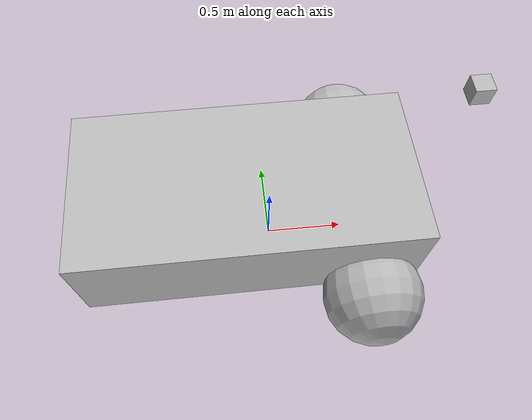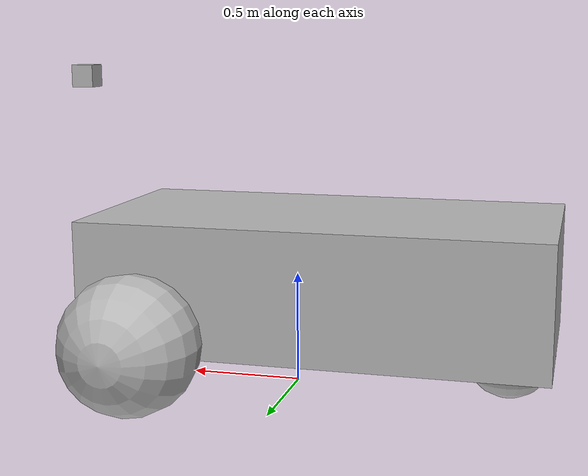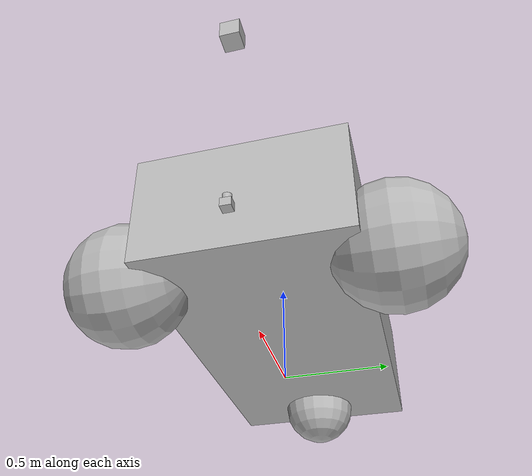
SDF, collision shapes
<?xml version="1.0"?>
<sdf version="1.6">

    <model name='vehicle'>
      <pose>0 0 0.325 0 -0 0</pose>

      <link name='chassis'>
        <pose>-0.151427 -0 0.175 0 -0 0</pose>
        <inertial>
          <mass>1.14395</mass>
          <inertia>
            <ixx>0.126164</ixx>
            <ixy>0</ixy>
            <ixz>0</ixz>
            <iyy>0.416519</iyy>
            <iyz>0</iyz>
            <izz>0.481014</izz>
          </inertia>
        </inertial>
        <visual name='visual'>
          <geometry>
            <box>
              <size>2.01142 1 0.568726</size>
            </box>
          </geometry>
        </visual>
        <collision name='collision'>
          <geometry>
            <box>
              <size>2.01142 1 0.568726</size>
            </box>
          </geometry>
        </collision>
      </link>

      <link name='left_wheel'>
        <pose>0.554283 0.625029 -0.025 -1.5707 0 0</pose>
        <inertial>
          <mass>2</mass>
          <inertia>
            <ixx>0.145833</ixx>
            <ixy>0</ixy>
            <ixz>0</ixz>
            <iyy>0.145833</iyy>
            <iyz>0</iyz>
            <izz>0.125</izz>
          </inertia>
        </inertial>
        <visual name='visual'>
          <geometry>
            <sphere>
              <radius>0.3</radius>
            </sphere>
          </geometry>
        </visual>
        <collision name='collision'>
          <geometry>
            <sphere>
              <radius>0.3</radius>
            </sphere>
          </geometry>
          <surface>
            <friction>
              <ode>
                <mu>1</mu>
                <mu2>1</mu2>
                <slip1>0</slip1>
                <slip2>0</slip2>
              </ode>
            </friction>
            <contact>
              <ode>
                <soft_cfm>0</soft_cfm>
                <soft_erp>0.2</soft_erp>
                <kp>1e+13</kp>
                <kd>1</kd>
                <max_vel>0.01</max_vel>
                <min_depth>0.01</min_depth>
              </ode>
            </contact>
          </surface>
        </collision>
      </link>

      <link name='right_wheel'>
        <pose>0.554282 -0.625029 -0.025 -1.5707 0 0</pose>
        <inertial>
          <mass>2</mass>
          <inertia>
            <ixx>0.145833</ixx>
            <ixy>0</ixy>
            <ixz>0</ixz>
            <iyy>0.145833</iyy>
            <iyz>0</iyz>
            <izz>0.125</izz>
          </inertia>
        </inertial>
        <visual name='visual'>
          <geometry>
            <sphere>
              <radius>0.3</radius>
            </sphere>
          </geometry>
        </visual>
        <collision name='collision'>
          <geometry>
            <sphere>
              <radius>0.3</radius>
            </sphere>
          </geometry>
          <surface>
            <friction>
              <ode>
                <mu>1</mu>
                <mu2>1</mu2>
                <slip1>0</slip1>
                <slip2>0</slip2>
              </ode>
            </friction>
            <contact>
              <ode>
                <soft_cfm>0</soft_cfm>
                <soft_erp>0.2</soft_erp>
                <kp>1e+13</kp>
                <kd>1</kd>
                <max_vel>0.01</max_vel>
                <min_depth>0.01</min_depth>
              </ode>
            </contact>
          </surface>
        </collision>
      </link>

      <link name='caster'>
        <pose>-0.957138 -0 -0.125 0 -0 0</pose>
        <inertial>
          <mass>1</mass>
          <inertia>
            <ixx>0.1</ixx>
            <ixy>0</ixy>
            <ixz>0</ixz>
            <iyy>0.1</iyy>
            <iyz>0</iyz>
            <izz>0.1</izz>
          </inertia>
        </inertial>
        <visual name='visual'>
          <geometry>
            <sphere>
              <radius>0.2</radius>
            </sphere>
          </geometry>
        </visual>
        <collision name='collision'>
          <geometry>
            <sphere>
              <radius>0.2</radius>
            </sphere>
          </geometry>
        </collision>
      </link>

      <joint name='left_wheel_joint' type='revolute'>
        <parent>chassis</parent>
        <child>left_wheel</child>
        <axis>
          <xyz>0 0 1</xyz>
          <limit>
            <lower>-1.79769e+308</lower>
            <upper>1.79769e+308</upper>
          </limit>
        </axis>
      </joint>

      <joint name='right_wheel_joint' type='revolute'>
        <parent>chassis</parent>
        <child>right_wheel</child>
        <axis>
          <xyz>0 0 1</xyz>
          <limit>
            <lower>-1.79769e+308</lower>
            <upper>1.79769e+308</upper>
          </limit>
        </axis>
      </joint>

      <joint name='caster_wheel' type='ball'>
        <parent>chassis</parent>
        <child>caster</child>
      </joint>
    <include>
      <uri>model://hokuyo</uri>
      <pose>1 0.0 0.0 0 0 0</pose>
    </include>
    <joint name="hokuyo_joint" type="fixed">
      <child>depth_camera::camera_link</child>
      <parent>chassis</parent>
    </joint>

    <include>
      <uri>model://depth_camera</uri>
      <pose>1 0.0 1 0 0 0</pose>
    </include>
    <joint name="camera_joint" type="fixed">
      <child>hokuyo::hokuyo_link</child>
      <parent>chassis</parent>
    </joint>

      <plugin name='diff_drive' filename='libgazebo_ros_diff_drive.so'>

        <ros>
          <argument>cmd_vel</argument>
          <argument>odom:=odom</argument>
        </ros>

        <!-- wheels -->
        <left_joint>left_wheel_joint</left_joint>
        <right_joint>right_wheel_joint</right_joint>

        <!-- kinematics -->
        <wheel_separation>1.25</wheel_separation>
        <wheel_diameter>0.6</wheel_diameter>

        <!-- limits -->
        <max_wheel_torque>20</max_wheel_torque>
        <max_wheel_acceleration>1.0</max_wheel_acceleration>

        <!-- output -->
        <publish_odom>true</publish_odom>
        <publish_odom_tf>true</publish_odom_tf>
        <publish_wheel_tf>true</publish_wheel_tf>

        <odometry_frame>odom</odometry_frame>
        <robot_base_frame>chassis</robot_base_frame>

      </plugin>

    </model>

</sdf>

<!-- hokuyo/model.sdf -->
<sdf version="1.5">
  <model name="hokuyo">
    <pose>0 0 0.035 0 0 0</pose>
    <link name="hokuyo_link">
      <inertial>
        <mass>0.1</mass>
      </inertial>
      <visual name="visual">
        <geometry>
          <mesh>
            <uri>model://hokuyo/meshes/hokuyo.dae</uri>
          </mesh>
        </geometry>
      </visual>
      <collision name="collision-base">
        <pose>0 0 -0.0145 0 0 0</pose>
        <geometry>
          <box>
            <size>0.05 0.05 0.041</size>
          </box>
        </geometry>
      </collision>
      <collision name="collision-top">
        <pose>0 0 0.0205 0 0 0</pose>
        <geometry>
          <cylinder>
            <radius>0.021</radius>
            <length>0.029</length>
          </cylinder>
        </geometry>
      </collision>
      <sensor name="laser" type="ray">
        <pose>0.01 0 0.0175 0 -0 0</pose>
        <ray>
          <scan>
            <horizontal>
              <samples>320</samples>
              <resolution>1</resolution>
              <min_angle>-0.45</min_angle>
              <max_angle>0.45</max_angle>
            </horizontal>
          </scan>
          <range>
            <min>0.08</min>
            <max>16</max>
            <resolution>0.01</resolution>
          </range>
        </ray>
 	<always_on>1</always_on>
        <update_rate>30</update_rate>
        <visualize>true</visualize>
       <plugin name="laser" filename="/opt/ros/crystal/lib/libgazebo_ros_ray_sensor.so">
      	 <ros>
          <namespace>/laser</namespace>
          <argument>~/out:=pointcloud2</argument>
         </ros>
      <!-- Set output to sensor_msgs/LaserScan to get same output type as gazebo_ros_laser -->
         <output_type>sensor_msgs/PointCloud2</output_type>
       </plugin>
       <plugin name="laser" filename="/opt/ros/crystal/lib/libgazebo_ros_ray_sensor.so">
      	 <ros>
          <namespace>/laser</namespace>
          <argument>~/out:=range</argument>
         </ros>
      <!-- Set output to sensor_msgs/LaserScan to get same output type as gazebo_ros_laser -->
         <output_type>sensor_msgs/Range</output_type>
       </plugin>
      </sensor>
    </link>
  </model>
</sdf>

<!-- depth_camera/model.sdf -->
<sdf version="1.6">
  <model name="depth_camera">
    <link name="camera_link">
      <pose>0 0 0.05 0 0 0</pose>
      <inertial>
        <mass>0.1</mass>
        <inertia>
          <ixx>0.000166667</ixx>
          <iyy>0.000166667</iyy>
          <izz>0.000166667</izz>
        </inertia>
      </inertial>
      <collision name="collision">
        <geometry>
          <box>
            <size>0.1 0.1 0.1</size>
          </box>
        </geometry>
      </collision>
      <visual name="visual">
        <geometry>
          <box>
            <size>0.1 0.1 0.1</size>
          </box>
        </geometry>
      </visual>
      <sensor name="camera" type="camera">
  <update_rate>0</update_rate>
   <camera>
	<horizontal_fov>1.3</horizontal_fov>
          <image>
            <width>1024</width>
            <height>768</height>
          </image>
          <clip>
            <near>0.1</near>
            <far>100</far>
          </clip>
        </camera>

        <!-- Use camera, not camera_triggered -->
          <plugin name="plugin_name" filename="libgazebo_ros_camera.so">
            <ros>
              <namespace>custom_ns</namespace>
              <argument>image_raw:=custom_img</argument>
              <argument>camera_info:=custom_info</argument>
            </ros>

            <!-- Set camera name. If empty, defaults to sensor name (i.e. "sensor_name") -->
            <camera_name>depth_camera</camera_name>

            <!-- Set TF frame name. If empty, defaults to link name (i.e. "link_name") -->
            <frame_name>camera_link</frame_name>

            <hack_baseline>0.07</hack_baseline>
            <!-- No need to repeat distortion parameters or to set autoDistortion -->
          </plugin>
     </sensor>
    </link>
  </model>
</sdf>
